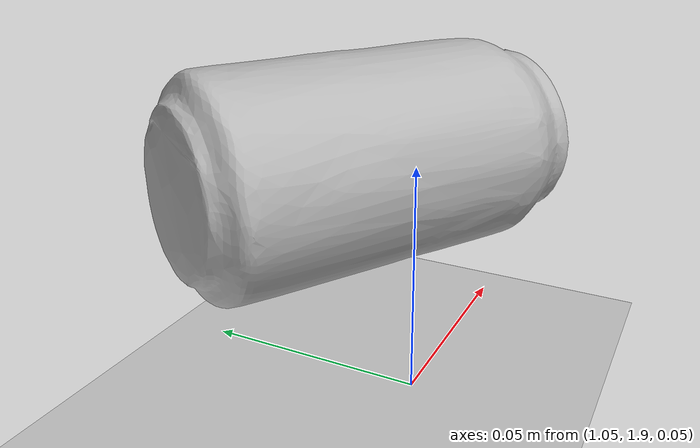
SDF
<sdf version="1.4">
 <world name="default">
  <light name="sun" type="directional">
   <pose>0 0 10 0 -0 0</pose>
   <diffuse>0.8 0.8 0.8 1</diffuse>
   <specular>0.2 0.2 0.2 1</specular>
   <attenuation>
    <range>1000</range>
    <constant>0.9</constant>
    <linear>0.01</linear>
    <quadratic>0.001</quadratic>
   </attenuation>
   <direction>-0.5 0.1 -0.9</direction>
  </light>
  <model name="ground_plane">
   <static>1</static>
   <link name="link">
    <collision name="collision">
     <geometry><plane><normal>0 0 1</normal><size>100 100</size></plane></geometry>
     <surface><friction><ode><mu>100</mu><mu2>50</mu2></ode></friction></surface>
    </collision>
    <visual name="visual">
     <cast_shadows>0</cast_shadows>
     <geometry><plane><normal>0 0 1</normal><size>100 100</size></plane></geometry>
     <material>
      <script><uri>file://media/materials/scripts/gazebo.material</uri><name>Gazebo/Grey</name></script>
     </material>
    </visual>
    <velocity_decay><linear>0</linear><angular>0</angular></velocity_decay>
   </link>
  </model>
  <physics type="ode">
   <max_step_size>0.001</max_step_size>
   <real_time_factor>1</real_time_factor>
   <real_time_update_rate>1000</real_time_update_rate>
   <gravity>0 0 -9.8</gravity>
  </physics>
  <scene><ambient>0.4 0.4 0.4 1</ambient><background>0.7 0.7 0.7 1</background><shadows>1</shadows></scene>
  <spherical_coordinates>
   <surface_model>EARTH_WGS84</surface_model>
   <latitude_deg>0</latitude_deg>
   <longitude_deg>0</longitude_deg>
   <elevation>0</elevation>
   <heading_deg>0</heading_deg>
  </spherical_coordinates>
  <model name="coke_can">
   <link name="link">
    <inertial>
     <pose>-0.01 -0.012 0.15 0 -0 0</pose>
     <mass>0.39</mass>
     <inertia><ixx>0.00058</ixx><ixy>0</ixy><ixz>0</ixz><iyy>0.00058</iyy><iyz>0</iyz><izz>0.00019</izz></inertia>
    </inertial>
    <collision name="collision">
     <pose>0 0 -0.46 0 -0 0</pose>
     <geometry><mesh><uri>model://coke_can/meshes/coke_can.dae</uri></mesh></geometry>
     <surface>
      <friction><ode><mu>1</mu><mu2>1</mu2></ode></friction>
      <contact><ode><kp>1e+07</kp><kd>1</kd><min_depth>0.001</min_depth><max_vel>0.1</max_vel></ode></contact>
     </surface>
    </collision>
    <visual name="visual">
     <pose>0 0 -0.46 0 -0 0</pose>
     <geometry><mesh><uri>model://coke_can/meshes/coke_can.dae</uri></mesh></geometry>
    </visual>
    <velocity_decay><linear>0</linear><angular>0</angular></velocity_decay>
   </link>
   <pose>1.30674 1.83912 0.068187 -1.56946 1.18144 -2.10614</pose>
   <static>0</static>
  </model>
 </world>
</sdf>
